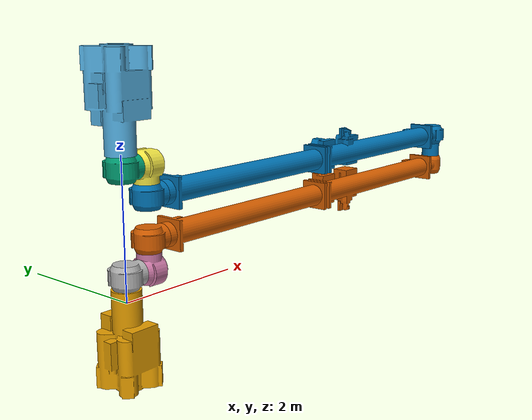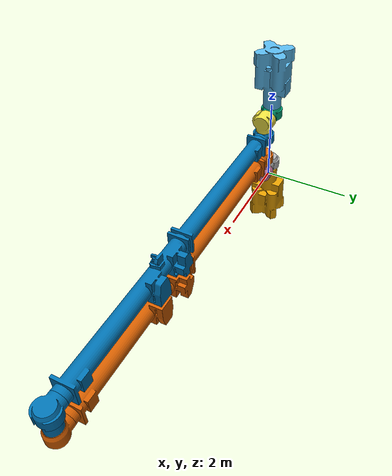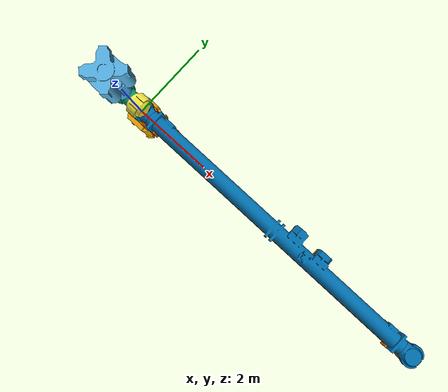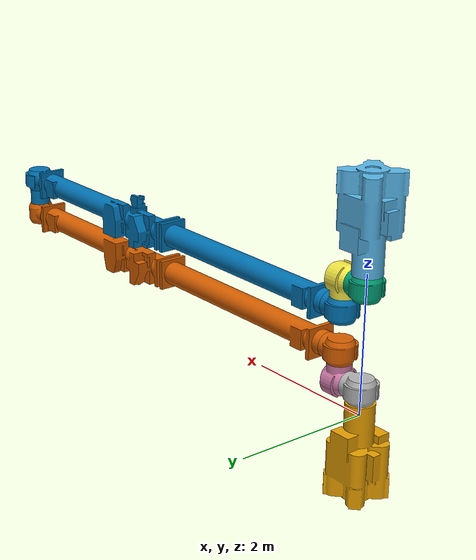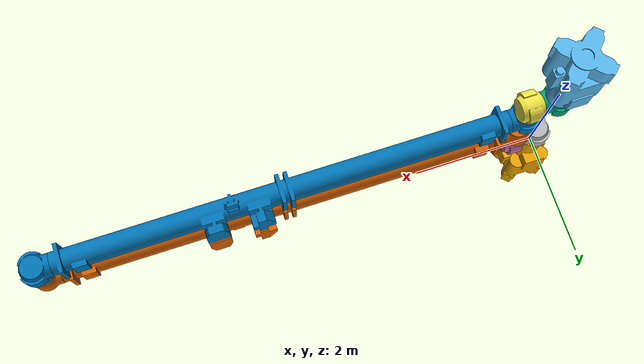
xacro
<?xml version="1.0"?>
<robot xmlns:xacro="http://www.ros.org/wiki/xacro" name="SSRMS_Canadarm2">
    <xacro:arg name="initial_positions_file" default="initial_positions.yaml" />

    <!-- Import SSRMS_Canadarm2 urdf file -->
    <xacro:include filename="$(find simulation)/models/canadarm/urdf/SSRMS_Canadarm2.urdf" />

    <!-- Import control_xacro -->
    <xacro:include filename="SSRMS_Canadarm2.ros2_control.xacro" />

    <xacro:SSRMS_Canadarm2_ros2_control name="FakeSystem" initial_positions_file="$(arg initial_positions_file)"/>

</robot>

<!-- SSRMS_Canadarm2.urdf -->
<robot name="SSRMS_Canadarm2">
  <ros2_control name="IgnitionSystem" type="system">
      <hardware>
          <plugin>ign_ros2_control/IgnitionSystem</plugin>
      </hardware>
      <joint name="Base_Joint">
          <command_interface name="effort"/>
          <state_interface name="position"/>
          <state_interface name="velocity"/>
          <state_interface name="effort"/>
      </joint>
      <joint name="Shoulder_Roll">
          <command_interface name="effort"/>
          <state_interface name="position"/>
          <state_interface name="velocity"/>
          <state_interface name="effort"/>
      </joint>
      <joint name="Shoulder_Yaw">
          <command_interface name="effort"/>
          <state_interface name="position"/>
          <state_interface name="velocity"/>
          <state_interface name="effort"/>
      </joint>
      <joint name="Elbow_Pitch">
          <command_interface name="effort"/>
          <state_interface name="position"/>
          <state_interface name="velocity"/>
          <state_interface name="effort"/>
      </joint>
      <joint name="Wrist_Pitch">
          <command_interface name="effort"/>
          <state_interface name="position"/>
          <state_interface name="velocity"/>
          <state_interface name="effort"/>
      </joint>
      <joint name="Wrist_Yaw">
          <command_interface name="effort"/>
          <state_interface name="position"/>
          <state_interface name="velocity"/>
          <state_interface name="effort"/>
      </joint>
      <joint name="Wrist_Roll">
          <command_interface name="effort"/>
          <state_interface name="position"/>
          <state_interface name="velocity"/>
          <state_interface name="effort"/>
      </joint>
  </ros2_control>

  <gazebo>
      <plugin filename="libign_ros2_control-system" name="ign_ros2_control::IgnitionROS2ControlPlugin">
      <robot_param>robot_description</robot_param>
      <robot_param_node>robot_state_publisher</robot_param_node>
      <parameters>$(find canadarm)/config/canadarm_control.yaml</parameters>
      </plugin>
  </gazebo>

  <!-- Colors -->
  <material name="White">
    <color rgba="1.0 1.0 1.0 1.0"/>
  </material>

  <link name="world" />
  <joint name="world_joint" type="fixed">
    <parent link="world"/>
    <child link="Base_SSRMS"/>
    <!-- Rotate Frame to Match the frames on Fig. 13 in Paper -->
    <origin rpy="0 0 0" xyz="0 0 2.0"/>
  </joint>

  <!-- SSRMS_Canadarm2 Dummy Base Body-->
  <link name="Base_SSRMS">
    <inertial>
      <origin rpy="0 0 0" xyz="0 0 0.5"/>
      <mass value="243.66"/>
      <inertia ixx="44.413" ixy="0" ixz="0" iyy="44.413" iyz="0" izz="9.336"/>
    </inertial>
    <visual>
      <origin rpy="0 0 0" xyz="0 0 0"/>
      <geometry>
        <mesh filename="package://sdf/meshes/ee.dae" scale="1.0 1.0 1.0" />
      </geometry>
    </visual>
  </link>

  <!-- Dummy Joint Joining Base to Body B1 -->
  <joint name="Base_Joint" type="revolute">
    <parent link="Base_SSRMS"/>
    <child link="B1"/>
    <!-- Rotate Frame to Match the frames on Fig. 13 in Paper -->
    <origin rpy="0 0 0" xyz="0 0 0"/>
    <axis xyz="0 0 1"/>
    <limit lower="-4.71239" upper="4.71239" effort="2332" velocity="0.0698132"/>
  </joint>

  <!--Manipulator-->
  <!-- Link 1 -->
  <link name="B1">
    <inertial>
      <origin rpy="0 -1.5708 0" xyz="0.25082 0 -0.175"/>
      <mass value="105.98"/>
      <inertia ixx="12.19" ixy="0" ixz="0" iyy="12.19" iyz="0" izz="3.061"/>
    </inertial>

    <visual>
      <origin rpy="0 -1.5708 0" xyz="0.25082 0 -0.175"/>
      <geometry>
        <mesh filename="package://sdf/meshes/joint_v3_0.dae" scale="1.0 1.0 1.0" />
      </geometry>
    </visual>

  </link>

  <!-- Joint 1: Shoulder Roll Joint -->
  <joint name="Shoulder_Roll" type="revolute">
    <parent link="B1"/>
    <child link="B2"/>
    <origin rpy="0 0 0" xyz="0.25082 0 -0.175"/>
    <axis xyz="1 0 0"/>
    <limit lower="-4.71239" upper="4.71239" effort="2332" velocity="0.0698132"/>
  </joint>

  <!-- Link 2 -->
  <link name="B2">
    <inertial>
      <origin rpy="0 0 0" xyz="0.175 0 -0.25082"/>
      <mass value="105.98"/>
      <inertia ixx="12.19" ixy="0" ixz="0" iyy="12.13" iyz="0" izz="3.061"/>
    </inertial>

    <visual>
      <origin rpy="0 0 0" xyz="0.175 0 -0.25082"/>
      <geometry>
        <mesh filename="package://sdf/meshes/joint_v3_0.dae" scale="1.0 1.0 1.0" />
      </geometry>
    </visual>
  </link>

  <!-- Joint 2: Shoulder Yaw Joint -->
  <joint name="Shoulder_Yaw" type="revolute">
    <parent link="B2"/>
    <child link="B3"/>
    <origin rpy="0 0 0" xyz="0.175 0 -0.25082"/>
    <axis xyz="0 0 1"/>
    <limit lower="-4.71239" upper="4.71239" effort="2332" velocity="0.0698132"/>
  </joint>

  <!-- Link 3 -->
  <link name="B3">

    <inertial>
      <origin rpy="3.14 0 0" xyz="4.0 0 -0.175"/>
      <mass value="314.88"/>
      <inertia ixx="15.41" ixy="0" ixz="0" iyy="2094.71" iyz="0" izz="2103.19"/>
    </inertial>

    <visual>
      <origin rpy="0 -1.5708 0" xyz="0.25082 0 -0.175"/>
      <geometry>
        <mesh filename="package://sdf/meshes/joint_v3_0.dae" scale="1.0 1.0 1.0" />
      </geometry>
    </visual>

    <visual>
      <origin rpy="-1.5708 0 -1.5708" xyz="0.25082 0 -0.175"/>
      <geometry>
        <mesh filename="package://sdf/meshes/long_link_1_v3_0.dae" scale="1.0 1.0 1.0" />
      </geometry>
    </visual>

    <visual>
      <origin rpy="0 1.5708 0" xyz="7.36082 0 -0.175"/>
      <geometry>
        <mesh filename="package://sdf/meshes/joint_v3_0.dae" scale="1.0 1.0 1.0" />
      </geometry>
    </visual>

    <visual>
      <origin rpy="0 0 1.5708" xyz="7.61164 0 -0.35"/>
      <geometry>
        <cylinder radius="0.165" length="0.5"/>
      </geometry>
    </visual>

  </link>

  <!-- Joint 4: Elbow Pitch Joint -->
  <joint name="Elbow_Pitch" type="revolute">
    <parent link="B3"/>
    <child link="B4"/>
    <origin rpy="0 0 0" xyz="7.61164 0 -0.6"/>
    <axis xyz="0 0 1"/>
    <limit lower="-4.71239" upper="4.71239" effort="2332" velocity="0.0698132"/>
  </joint>

  <!-- Link 5 -->
  <link name="B4">

    <inertial>
      <origin rpy="0 0 0" xyz="-3.6 0 -0.175"/>
      <mass value="279.2"/>
      <inertia ixx="9.522" ixy="0" ixz="0" iyy="1966.28" iyz="0" izz="1966.28"/>
    </inertial>

    <visual>
      <origin rpy="0 1.5708 0" xyz="-0.25082 0 -0.175"/>
      <geometry>
        <mesh filename="package://sdf/meshes/link_joint_v2_1.dae" scale="1.0 1.0 1.0" />
      </geometry>
    </visual>

    <visual>
      <origin rpy="1.57 -3.14 1.57" xyz="-7.36082 0 -0.175"/>
      <geometry>
        <mesh filename="package://sdf/meshes/long_link_2_v3_0.dae" scale="1.0 1.0 1.0" />
      </geometry>
    </visual>

    <visual>
      <origin rpy="0 -1.57 0" xyz="-7.36082 0 -0.175"/>
      <geometry>
        <mesh filename="package://sdf/meshes/joint_v3_0.dae" scale="1.0 1.0 1.0" />
      </geometry>
    </visual>

  </link>

  <!-- Joint 5: Wrist Pitch Joint -->
  <joint name="Wrist_Pitch" type="revolute">
    <parent link="B4"/>
    <child link="B5"/>
    <origin rpy="0 0 0" xyz="-7.61164 0 -0.35"/>
    <axis xyz="0 0 -1"/>
    <limit lower="-4.71239" upper="4.71239" effort="2332" velocity="0.0698132"/>
  </joint>

  <!-- Link 6 -->
  <link name="B5">

    <inertial>
      <origin rpy="1.5708 0 0" xyz="0 0 0.0"/>
      <mass value="105.98"/>
      <inertia ixx="8.305" ixy="0" ixz="0" iyy="3.061" iyz="0" izz="8.0386"/>
    </inertial>

    <visual>
      <origin rpy="0 -3.14 0" xyz="0 0 0"/>
      <geometry>
        <mesh filename="package://sdf/meshes/joint_v3_0.dae" scale="1.0 1.0 1.0" />
      </geometry>
    </visual>
  </link>

  <!-- Joint 6: Wrist Yaw Joint -->
  <joint name="Wrist_Yaw" type="revolute">
    <parent link="B5"/>
    <child link="B6"/>
    <origin rpy="0 0 0" xyz="-0.175 0 -0.25082"/>
    <axis xyz="1 0 0"/>
    <limit lower="-4.71239" upper="4.71239" effort="2332" velocity="0.0698132"/>
  </joint>

  <!-- Link 7 -->
  <link name="B6">

    <inertial>
      <origin rpy="0 -1.5708 0" xyz="0 0 0"/>
      <mass value="105.98"/>
      <inertia ixx="12.13" ixy="0" ixz="0" iyy="12.13" iyz="0" izz="3.061"/>
    </inertial>

    <visual>
      <origin rpy="0 -1.5708 0" xyz="0 0 0"/>
      <geometry>
        <mesh filename="package://sdf/meshes/joint_v3_0.dae" scale="1.0 1.0 1.0" />
      </geometry>
    </visual>

  </link>

  <!-- Joint 7: Wrist Roll Joint -->
  <joint name="Wrist_Roll" type="revolute">
    <parent link="B6"/>
    <child link="EE_SSRMS"/>
    <origin rpy="0 0 0" xyz="-0.25082 0 -0.175"/>
    <axis xyz="0 0 1"/>
    <limit lower="-4.71239" upper="4.71239" effort="2332" velocity="0.0698132"/>
  </joint>

  <!-- Link 8 -->
  <link name="EE_SSRMS">

    <inertial>
      <origin rpy="0 1.5708 0" xyz="0 0 -0.5"/>
      <mass value="243.66"/>
      <inertia ixx="9.336" ixy="0" ixz="0" iyy="44.41" iyz="0" izz="44.41"/>
    </inertial>

    <visual>
      <origin rpy="0 -3.1415 0" xyz="0 0 0"/>
      <geometry>
        <mesh filename="package://sdf/meshes/ee.dae" scale="1.0 1.0 1.0" />
      </geometry>
    </visual>

  </link>

</robot>
